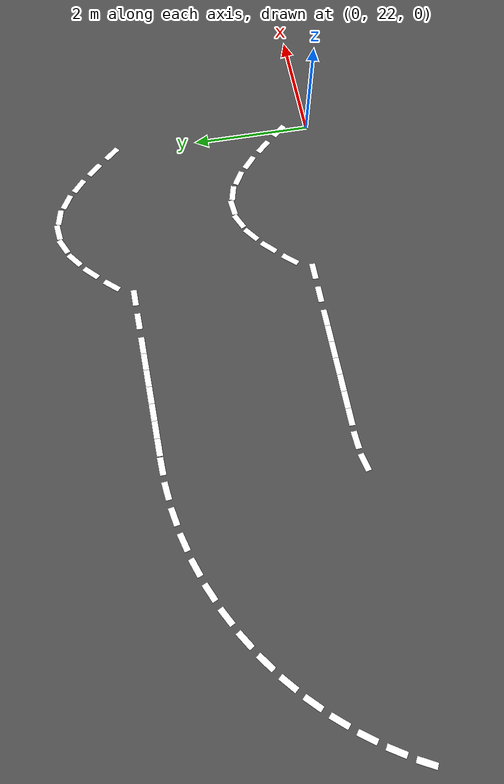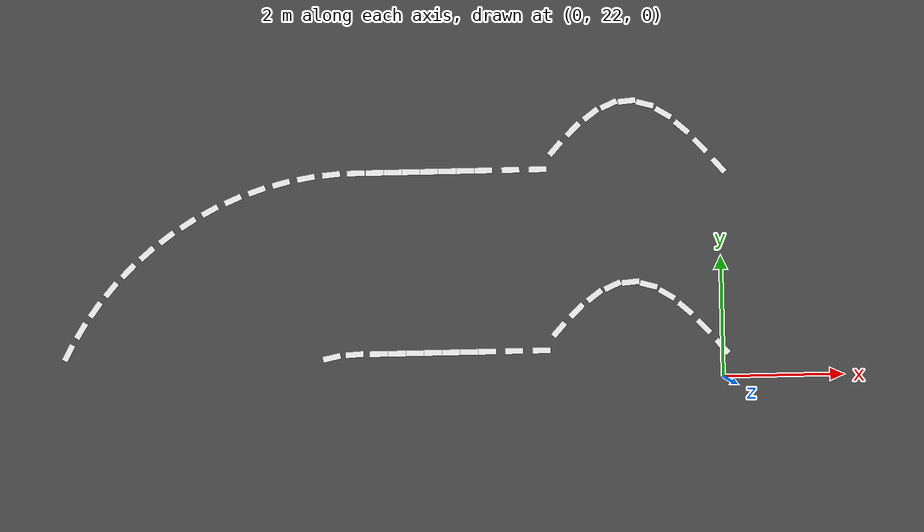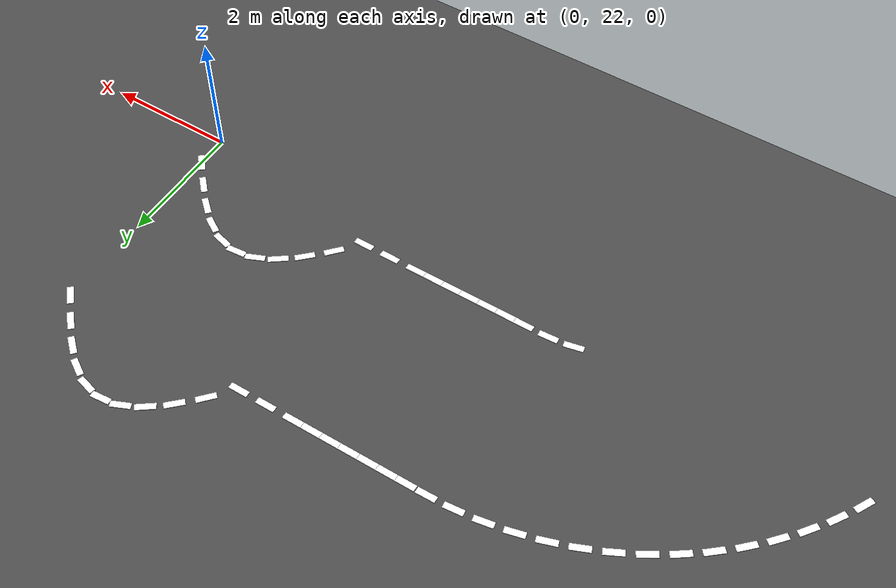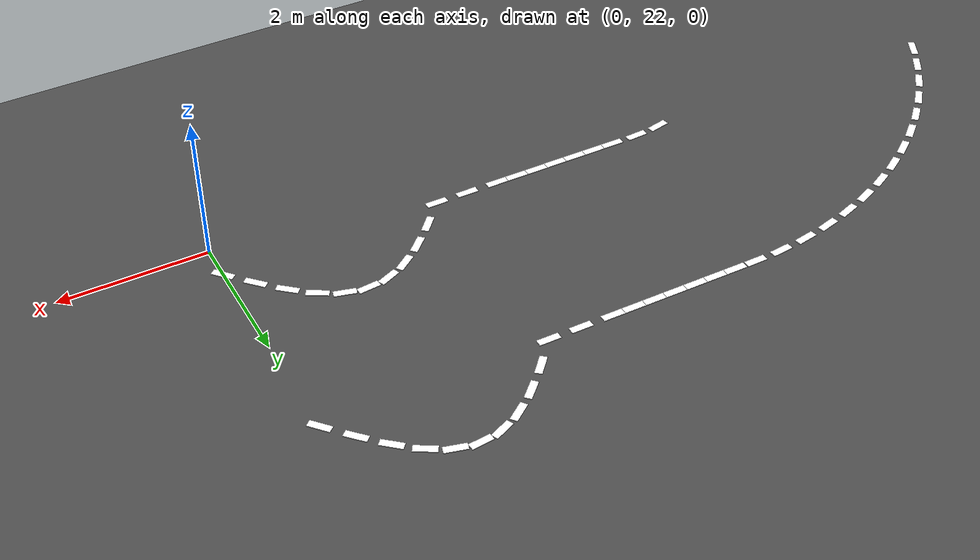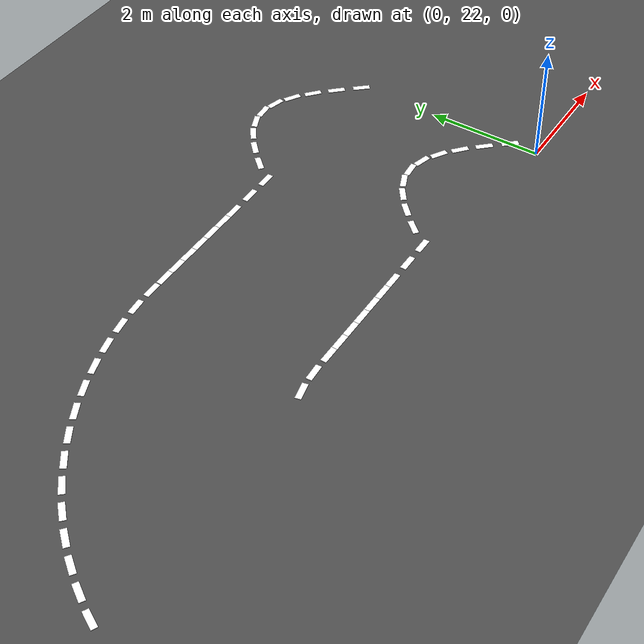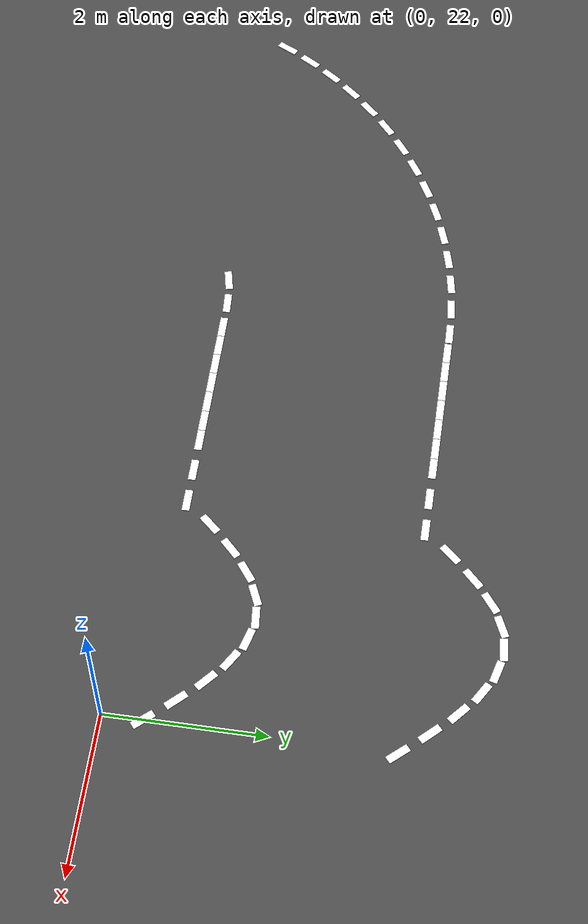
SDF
<sdf version="1.8">
 <world name="igvc_autonav">
  <model name="ground_plane">
   <static>true</static>
   <link name="link">
    <collision name="collision">
     <geometry><plane><normal>0 0 1</normal><size>60 60</size></plane></geometry>
     <surface><friction><ode><mu>0.8</mu><mu2>0.8</mu2></ode></friction></surface>
    </collision>
    <visual name="visual">
     <geometry><plane><normal>0 0 1</normal><size>60 60</size></plane></geometry>
     <material>
      <ambient>0.25 0.25 0.25 1</ambient>
      <diffuse>0.3 0.3 0.3 1</diffuse>
      <specular>0.1 0.1 0.1 1</specular>
     </material>
    </visual>
   </link>
  </model>
  <model name="lane_inner_102">
   <static>true</static>
   <pose>-0.0000 22.5000 0.01 0 0 2.2878</pose>
   <link name="link">
    <visual name="visual">
     <geometry><box><size>0.3 0.1 0.01</size></box></geometry>
     <material><ambient>1 1 1 1</ambient><diffuse>1 1 1 1</diffuse><emissive>1 1 1 1</emissive></material>
    </visual>
   </link>
  </model>
  <model name="lane_inner_103">
   <static>true</static>
   <pose>-0.3000 22.8399 0.01 0 0 2.3256</pose>
   <link name="link">
    <visual name="visual">
     <geometry><box><size>0.3 0.1 0.01</size></box></geometry>
     <material><ambient>1 1 1 1</ambient><diffuse>1 1 1 1</diffuse><emissive>1 1 1 1</emissive></material>
    </visual>
   </link>
  </model>
  <model name="lane_inner_104">
   <static>true</static>
   <pose>-0.6000 23.1466 0.01 0 0 2.4227</pose>
   <link name="link">
    <visual name="visual">
     <geometry><box><size>0.3 0.1 0.01</size></box></geometry>
     <material><ambient>1 1 1 1</ambient><diffuse>1 1 1 1</diffuse><emissive>1 1 1 1</emissive></material>
    </visual>
   </link>
  </model>
  <model name="lane_inner_105">
   <static>true</static>
   <pose>-0.9000 23.3899 0.01 0 0 2.6002</pose>
   <link name="link">
    <visual name="visual">
     <geometry><box><size>0.3 0.1 0.01</size></box></geometry>
     <material><ambient>1 1 1 1</ambient><diffuse>1 1 1 1</diffuse><emissive>1 1 1 1</emissive></material>
    </visual>
   </link>
  </model>
  <model name="lane_inner_106">
   <static>true</static>
   <pose>-1.2000 23.5462 0.01 0 0 2.8792</pose>
   <link name="link">
    <visual name="visual">
     <geometry><box><size>0.3 0.1 0.01</size></box></geometry>
     <material><ambient>1 1 1 1</ambient><diffuse>1 1 1 1</diffuse><emissive>1 1 1 1</emissive></material>
    </visual>
   </link>
  </model>
  <model name="lane_inner_107">
   <static>true</static>
   <pose>-1.5000 23.6000 0.01 0 0 -3.0516</pose>
   <link name="link">
    <visual name="visual">
     <geometry><box><size>0.3 0.1 0.01</size></box></geometry>
     <material><ambient>1 1 1 1</ambient><diffuse>1 1 1 1</diffuse><emissive>1 1 1 1</emissive></material>
    </visual>
   </link>
  </model>
  <model name="lane_inner_108">
   <static>true</static>
   <pose>-1.8000 23.5462 0.01 0 0 -2.7268</pose>
   <link name="link">
    <visual name="visual">
     <geometry><box><size>0.3 0.1 0.01</size></box></geometry>
     <material><ambient>1 1 1 1</ambient><diffuse>1 1 1 1</diffuse><emissive>1 1 1 1</emissive></material>
    </visual>
   </link>
  </model>
  <model name="lane_inner_109">
   <static>true</static>
   <pose>-2.1000 23.3899 0.01 0 0 -2.4998</pose>
   <link name="link">
    <visual name="visual">
     <geometry><box><size>0.3 0.1 0.01</size></box></geometry>
     <material><ambient>1 1 1 1</ambient><diffuse>1 1 1 1</diffuse><emissive>1 1 1 1</emissive></material>
    </visual>
   </link>
  </model>
  <model name="lane_inner_110">
   <static>true</static>
   <pose>-2.4000 23.1466 0.01 0 0 -2.3657</pose>
   <link name="link">
    <visual name="visual">
     <geometry><box><size>0.3 0.1 0.01</size></box></geometry>
     <material><ambient>1 1 1 1</ambient><diffuse>1 1 1 1</diffuse><emissive>1 1 1 1</emissive></material>
    </visual>
   </link>
  </model>
  <model name="lane_inner_111">
   <static>true</static>
   <pose>-2.7000 22.8399 0.01 0 0 -2.3001</pose>
   <link name="link">
    <visual name="visual">
     <geometry><box><size>0.3 0.1 0.01</size></box></geometry>
     <material><ambient>1 1 1 1</ambient><diffuse>1 1 1 1</diffuse><emissive>1 1 1 1</emissive></material>
    </visual>
   </link>
  </model>
  <model name="lane_inner_112">
   <static>true</static>
   <pose>-3.0000 22.5000 0.01 0 0 3.1416</pose>
   <link name="link">
    <visual name="visual">
     <geometry><box><size>0.3 0.1 0.01</size></box></geometry>
     <material><ambient>1 1 1 1</ambient><diffuse>1 1 1 1</diffuse><emissive>1 1 1 1</emissive></material>
    </visual>
   </link>
  </model>
  <model name="lane_inner_113">
   <static>true</static>
   <pose>-3.4500 22.5000 0.01 0 0 3.1416</pose>
   <link name="link">
    <visual name="visual">
     <geometry><box><size>0.3 0.1 0.01</size></box></geometry>
     <material><ambient>1 1 1 1</ambient><diffuse>1 1 1 1</diffuse><emissive>1 1 1 1</emissive></material>
    </visual>
   </link>
  </model>
  <model name="lane_inner_114">
   <static>true</static>
   <pose>-3.9000 22.5000 0.01 0 0 3.1416</pose>
   <link name="link">
    <visual name="visual">
     <geometry><box><size>0.3 0.1 0.01</size></box></geometry>
     <material><ambient>1 1 1 1</ambient><diffuse>1 1 1 1</diffuse><emissive>1 1 1 1</emissive></material>
    </visual>
   </link>
  </model>
  <model name="lane_inner_115">
   <static>true</static>
   <pose>-4.2000 22.5000 0.01 0 0 3.1416</pose>
   <link name="link">
    <visual name="visual">
     <geometry><box><size>0.3 0.1 0.01</size></box></geometry>
     <material><ambient>1 1 1 1</ambient><diffuse>1 1 1 1</diffuse><emissive>1 1 1 1</emissive></material>
    </visual>
   </link>
  </model>
  <model name="lane_inner_116">
   <static>true</static>
   <pose>-4.5000 22.5000 0.01 0 0 3.1416</pose>
   <link name="link">
    <visual name="visual">
     <geometry><box><size>0.3 0.1 0.01</size></box></geometry>
     <material><ambient>1 1 1 1</ambient><diffuse>1 1 1 1</diffuse><emissive>1 1 1 1</emissive></material>
    </visual>
   </link>
  </model>
  <model name="lane_inner_117">
   <static>true</static>
   <pose>-4.8000 22.5000 0.01 0 0 3.1416</pose>
   <link name="link">
    <visual name="visual">
     <geometry><box><size>0.3 0.1 0.01</size></box></geometry>
     <material><ambient>1 1 1 1</ambient><diffuse>1 1 1 1</diffuse><emissive>1 1 1 1</emissive></material>
    </visual>
   </link>
  </model>
  <model name="lane_inner_118">
   <static>true</static>
   <pose>-5.1000 22.5000 0.01 0 0 3.1416</pose>
   <link name="link">
    <visual name="visual">
     <geometry><box><size>0.3 0.1 0.01</size></box></geometry>
     <material><ambient>1 1 1 1</ambient><diffuse>1 1 1 1</diffuse><emissive>1 1 1 1</emissive></material>
    </visual>
   </link>
  </model>
  <model name="lane_inner_119">
   <static>true</static>
   <pose>-5.4000 22.5000 0.01 0 0 3.1416</pose>
   <link name="link">
    <visual name="visual">
     <geometry><box><size>0.3 0.1 0.01</size></box></geometry>
     <material><ambient>1 1 1 1</ambient><diffuse>1 1 1 1</diffuse><emissive>1 1 1 1</emissive></material>
    </visual>
   </link>
  </model>
  <model name="lane_inner_120">
   <static>true</static>
   <pose>-5.7000 22.5000 0.01 0 0 3.1416</pose>
   <link name="link">
    <visual name="visual">
     <geometry><box><size>0.3 0.1 0.01</size></box></geometry>
     <material><ambient>1 1 1 1</ambient><diffuse>1 1 1 1</diffuse><emissive>1 1 1 1</emissive></material>
    </visual>
   </link>
  </model>
  <model name="lane_inner_121">
   <static>true</static>
   <pose>-6.0958 22.4982 0.01 0 0 -3.0841</pose>
   <link name="link">
    <visual name="visual">
     <geometry><box><size>0.3 0.1 0.01</size></box></geometry>
     <material><ambient>1 1 1 1</ambient><diffuse>1 1 1 1</diffuse><emissive>1 1 1 1</emissive></material>
    </visual>
   </link>
  </model>
  <model name="lane_inner_122">
   <static>true</static>
   <pose>-6.4760 22.4543 0.01 0 0 -2.9309</pose>
   <link name="link">
    <visual name="visual">
     <geometry><box><size>0.3 0.1 0.01</size></box></geometry>
     <material><ambient>1 1 1 1</ambient><diffuse>1 1 1 1</diffuse><emissive>1 1 1 1</emissive></material>
    </visual>
   </link>
  </model>
  <model name="lane_outer_124">
   <static>true</static>
   <pose>-0.0000 25.5000 0.01 0 0 2.2878</pose>
   <link name="link">
    <visual name="visual">
     <geometry><box><size>0.3 0.1 0.01</size></box></geometry>
     <material><ambient>1 1 1 1</ambient><diffuse>1 1 1 1</diffuse><emissive>1 1 1 1</emissive></material>
    </visual>
   </link>
  </model>
  <model name="lane_outer_125">
   <static>true</static>
   <pose>-0.3000 25.8399 0.01 0 0 2.3256</pose>
   <link name="link">
    <visual name="visual">
     <geometry><box><size>0.3 0.1 0.01</size></box></geometry>
     <material><ambient>1 1 1 1</ambient><diffuse>1 1 1 1</diffuse><emissive>1 1 1 1</emissive></material>
    </visual>
   </link>
  </model>
  <model name="lane_outer_126">
   <static>true</static>
   <pose>-0.6000 26.1466 0.01 0 0 2.4227</pose>
   <link name="link">
    <visual name="visual">
     <geometry><box><size>0.3 0.1 0.01</size></box></geometry>
     <material><ambient>1 1 1 1</ambient><diffuse>1 1 1 1</diffuse><emissive>1 1 1 1</emissive></material>
    </visual>
   </link>
  </model>
  <model name="lane_outer_127">
   <static>true</static>
   <pose>-0.9000 26.3899 0.01 0 0 2.6002</pose>
   <link name="link">
    <visual name="visual">
     <geometry><box><size>0.3 0.1 0.01</size></box></geometry>
     <material><ambient>1 1 1 1</ambient><diffuse>1 1 1 1</diffuse><emissive>1 1 1 1</emissive></material>
    </visual>
   </link>
  </model>
  <model name="lane_outer_128">
   <static>true</static>
   <pose>-1.2000 26.5462 0.01 0 0 2.8792</pose>
   <link name="link">
    <visual name="visual">
     <geometry><box><size>0.3 0.1 0.01</size></box></geometry>
     <material><ambient>1 1 1 1</ambient><diffuse>1 1 1 1</diffuse><emissive>1 1 1 1</emissive></material>
    </visual>
   </link>
  </model>
  <model name="lane_outer_129">
   <static>true</static>
   <pose>-1.5000 26.6000 0.01 0 0 -3.0516</pose>
   <link name="link">
    <visual name="visual">
     <geometry><box><size>0.3 0.1 0.01</size></box></geometry>
     <material><ambient>1 1 1 1</ambient><diffuse>1 1 1 1</diffuse><emissive>1 1 1 1</emissive></material>
    </visual>
   </link>
  </model>
  <model name="lane_outer_130">
   <static>true</static>
   <pose>-1.8000 26.5462 0.01 0 0 -2.7268</pose>
   <link name="link">
    <visual name="visual">
     <geometry><box><size>0.3 0.1 0.01</size></box></geometry>
     <material><ambient>1 1 1 1</ambient><diffuse>1 1 1 1</diffuse><emissive>1 1 1 1</emissive></material>
    </visual>
   </link>
  </model>
  <model name="lane_outer_131">
   <static>true</static>
   <pose>-2.1000 26.3899 0.01 0 0 -2.4998</pose>
   <link name="link">
    <visual name="visual">
     <geometry><box><size>0.3 0.1 0.01</size></box></geometry>
     <material><ambient>1 1 1 1</ambient><diffuse>1 1 1 1</diffuse><emissive>1 1 1 1</emissive></material>
    </visual>
   </link>
  </model>
  <model name="lane_outer_132">
   <static>true</static>
   <pose>-2.4000 26.1466 0.01 0 0 -2.3657</pose>
   <link name="link">
    <visual name="visual">
     <geometry><box><size>0.3 0.1 0.01</size></box></geometry>
     <material><ambient>1 1 1 1</ambient><diffuse>1 1 1 1</diffuse><emissive>1 1 1 1</emissive></material>
    </visual>
   </link>
  </model>
  <model name="lane_outer_133">
   <static>true</static>
   <pose>-2.7000 25.8399 0.01 0 0 -2.3001</pose>
   <link name="link">
    <visual name="visual">
     <geometry><box><size>0.3 0.1 0.01</size></box></geometry>
     <material><ambient>1 1 1 1</ambient><diffuse>1 1 1 1</diffuse><emissive>1 1 1 1</emissive></material>
    </visual>
   </link>
  </model>
  <model name="lane_outer_134">
   <static>true</static>
   <pose>-3.0000 25.5000 0.01 0 0 3.1416</pose>
   <link name="link">
    <visual name="visual">
     <geometry><box><size>0.3 0.1 0.01</size></box></geometry>
     <material><ambient>1 1 1 1</ambient><diffuse>1 1 1 1</diffuse><emissive>1 1 1 1</emissive></material>
    </visual>
   </link>
  </model>
  <model name="lane_outer_135">
   <static>true</static>
   <pose>-3.4500 25.5000 0.01 0 0 3.1416</pose>
   <link name="link">
    <visual name="visual">
     <geometry><box><size>0.3 0.1 0.01</size></box></geometry>
     <material><ambient>1 1 1 1</ambient><diffuse>1 1 1 1</diffuse><emissive>1 1 1 1</emissive></material>
    </visual>
   </link>
  </model>
  <model name="lane_outer_136">
   <static>true</static>
   <pose>-3.9000 25.5000 0.01 0 0 3.1416</pose>
   <link name="link">
    <visual name="visual">
     <geometry><box><size>0.3 0.1 0.01</size></box></geometry>
     <material><ambient>1 1 1 1</ambient><diffuse>1 1 1 1</diffuse><emissive>1 1 1 1</emissive></material>
    </visual>
   </link>
  </model>
  <model name="lane_outer_137">
   <static>true</static>
   <pose>-4.2000 25.5000 0.01 0 0 3.1416</pose>
   <link name="link">
    <visual name="visual">
     <geometry><box><size>0.3 0.1 0.01</size></box></geometry>
     <material><ambient>1 1 1 1</ambient><diffuse>1 1 1 1</diffuse><emissive>1 1 1 1</emissive></material>
    </visual>
   </link>
  </model>
  <model name="lane_outer_138">
   <static>true</static>
   <pose>-4.5000 25.5000 0.01 0 0 3.1416</pose>
   <link name="link">
    <visual name="visual">
     <geometry><box><size>0.3 0.1 0.01</size></box></geometry>
     <material><ambient>1 1 1 1</ambient><diffuse>1 1 1 1</diffuse><emissive>1 1 1 1</emissive></material>
    </visual>
   </link>
  </model>
  <model name="lane_outer_139">
   <static>true</static>
   <pose>-4.8000 25.5000 0.01 0 0 3.1416</pose>
   <link name="link">
    <visual name="visual">
     <geometry><box><size>0.3 0.1 0.01</size></box></geometry>
     <material><ambient>1 1 1 1</ambient><diffuse>1 1 1 1</diffuse><emissive>1 1 1 1</emissive></material>
    </visual>
   </link>
  </model>
  <model name="lane_outer_140">
   <static>true</static>
   <pose>-5.1000 25.5000 0.01 0 0 3.1416</pose>
   <link name="link">
    <visual name="visual">
     <geometry><box><size>0.3 0.1 0.01</size></box></geometry>
     <material><ambient>1 1 1 1</ambient><diffuse>1 1 1 1</diffuse><emissive>1 1 1 1</emissive></material>
    </visual>
   </link>
  </model>
  <model name="lane_outer_141">
   <static>true</static>
   <pose>-5.4000 25.5000 0.01 0 0 3.1416</pose>
   <link name="link">
    <visual name="visual">
     <geometry><box><size>0.3 0.1 0.01</size></box></geometry>
     <material><ambient>1 1 1 1</ambient><diffuse>1 1 1 1</diffuse><emissive>1 1 1 1</emissive></material>
    </visual>
   </link>
  </model>
  <model name="lane_outer_142">
   <static>true</static>
   <pose>-5.7000 25.5000 0.01 0 0 3.1416</pose>
   <link name="link">
    <visual name="visual">
     <geometry><box><size>0.3 0.1 0.01</size></box></geometry>
     <material><ambient>1 1 1 1</ambient><diffuse>1 1 1 1</diffuse><emissive>1 1 1 1</emissive></material>
    </visual>
   </link>
  </model>
  <model name="lane_outer_143">
   <static>true</static>
   <pose>-6.0145 25.4999 0.01 0 0 -3.1214</pose>
   <link name="link">
    <visual name="visual">
     <geometry><box><size>0.3 0.1 0.01</size></box></geometry>
     <material><ambient>1 1 1 1</ambient><diffuse>1 1 1 1</diffuse><emissive>1 1 1 1</emissive></material>
    </visual>
   </link>
  </model>
  <model name="lane_outer_144">
   <static>true</static>
   <pose>-6.4210 25.4839 0.01 0 0 -3.0458</pose>
   <link name="link">
    <visual name="visual">
     <geometry><box><size>0.3 0.1 0.01</size></box></geometry>
     <material><ambient>1 1 1 1</ambient><diffuse>1 1 1 1</diffuse><emissive>1 1 1 1</emissive></material>
    </visual>
   </link>
  </model>
  <model name="lane_outer_145">
   <static>true</static>
   <pose>-6.8396 25.4355 0.01 0 0 -2.9692</pose>
   <link name="link">
    <visual name="visual">
     <geometry><box><size>0.3 0.1 0.01</size></box></geometry>
     <material><ambient>1 1 1 1</ambient><diffuse>1 1 1 1</diffuse><emissive>1 1 1 1</emissive></material>
    </visual>
   </link>
  </model>
  <model name="lane_outer_146">
   <static>true</static>
   <pose>-7.2532 25.3553 0.01 0 0 -2.8926</pose>
   <link name="link">
    <visual name="visual">
     <geometry><box><size>0.3 0.1 0.01</size></box></geometry>
     <material><ambient>1 1 1 1</ambient><diffuse>1 1 1 1</diffuse><emissive>1 1 1 1</emissive></material>
    </visual>
   </link>
  </model>
  <model name="lane_outer_147">
   <static>true</static>
   <pose>-7.6595 25.2437 0.01 0 0 -2.8159</pose>
   <link name="link">
    <visual name="visual">
     <geometry><box><size>0.3 0.1 0.01</size></box></geometry>
     <material><ambient>1 1 1 1</ambient><diffuse>1 1 1 1</diffuse><emissive>1 1 1 1</emissive></material>
    </visual>
   </link>
  </model>
  <model name="lane_outer_148">
   <static>true</static>
   <pose>-8.0560 25.1013 0.01 0 0 -2.7393</pose>
   <link name="link">
    <visual name="visual">
     <geometry><box><size>0.3 0.1 0.01</size></box></geometry>
     <material><ambient>1 1 1 1</ambient><diffuse>1 1 1 1</diffuse><emissive>1 1 1 1</emissive></material>
    </visual>
   </link>
  </model>
  <model name="lane_outer_149">
   <static>true</static>
   <pose>-8.4405 24.9289 0.01 0 0 -2.6627</pose>
   <link name="link">
    <visual name="visual">
     <geometry><box><size>0.3 0.1 0.01</size></box></geometry>
     <material><ambient>1 1 1 1</ambient><diffuse>1 1 1 1</diffuse><emissive>1 1 1 1</emissive></material>
    </visual>
   </link>
  </model>
  <model name="lane_outer_150">
   <static>true</static>
   <pose>-8.8106 24.7276 0.01 0 0 -2.5861</pose>
   <link name="link">
    <visual name="visual">
     <geometry><box><size>0.3 0.1 0.01</size></box></geometry>
     <material><ambient>1 1 1 1</ambient><diffuse>1 1 1 1</diffuse><emissive>1 1 1 1</emissive></material>
    </visual>
   </link>
  </model>
  <model name="lane_outer_151">
   <static>true</static>
   <pose>-9.1643 24.4986 0.01 0 0 -2.5094</pose>
   <link name="link">
    <visual name="visual">
     <geometry><box><size>0.3 0.1 0.01</size></box></geometry>
     <material><ambient>1 1 1 1</ambient><diffuse>1 1 1 1</diffuse><emissive>1 1 1 1</emissive></material>
    </visual>
   </link>
  </model>
  <model name="lane_outer_152">
   <static>true</static>
   <pose>-9.4993 24.2432 0.01 0 0 -2.4328</pose>
   <link name="link">
    <visual name="visual">
     <geometry><box><size>0.3 0.1 0.01</size></box></geometry>
     <material><ambient>1 1 1 1</ambient><diffuse>1 1 1 1</diffuse><emissive>1 1 1 1</emissive></material>
    </visual>
   </link>
  </model>
  <model name="lane_outer_153">
   <static>true</static>
   <pose>-9.8139 23.9629 0.01 0 0 -2.3562</pose>
   <link name="link">
    <visual name="visual">
     <geometry><box><size>0.3 0.1 0.01</size></box></geometry>
     <material><ambient>1 1 1 1</ambient><diffuse>1 1 1 1</diffuse><emissive>1 1 1 1</emissive></material>
    </visual>
   </link>
  </model>
  <model name="lane_outer_154">
   <static>true</static>
   <pose>-10.1060 23.6593 0.01 0 0 -2.2796</pose>
   <link name="link">
    <visual name="visual">
     <geometry><box><size>0.3 0.1 0.01</size></box></geometry>
     <material><ambient>1 1 1 1</ambient><diffuse>1 1 1 1</diffuse><emissive>1 1 1 1</emissive></material>
    </visual>
   </link>
  </model>
  <model name="lane_outer_155">
   <static>true</static>
   <pose>-10.3741 23.3342 0.01 0 0 -2.2029</pose>
   <link name="link">
    <visual name="visual">
     <geometry><box><size>0.3 0.1 0.01</size></box></geometry>
     <material><ambient>1 1 1 1</ambient><diffuse>1 1 1 1</diffuse><emissive>1 1 1 1</emissive></material>
    </visual>
   </link>
  </model>
  <model name="lane_outer_156">
   <static>true</static>
   <pose>-10.6165 22.9896 0.01 0 0 -2.1263</pose>
   <link name="link">
    <visual name="visual">
     <geometry><box><size>0.3 0.1 0.01</size></box></geometry>
     <material><ambient>1 1 1 1</ambient><diffuse>1 1 1 1</diffuse><emissive>1 1 1 1</emissive></material>
    </visual>
   </link>
  </model>
  <model name="lane_outer_157">
   <static>true</static>
   <pose>-10.8318 22.6275 0.01 0 0 -2.0497</pose>
   <link name="link">
    <visual name="visual">
     <geometry><box><size>0.3 0.1 0.01</size></box></geometry>
     <material><ambient>1 1 1 1</ambient><diffuse>1 1 1 1</diffuse><emissive>1 1 1 1</emissive></material>
    </visual>
   </link>
  </model>
 </world>
</sdf>
